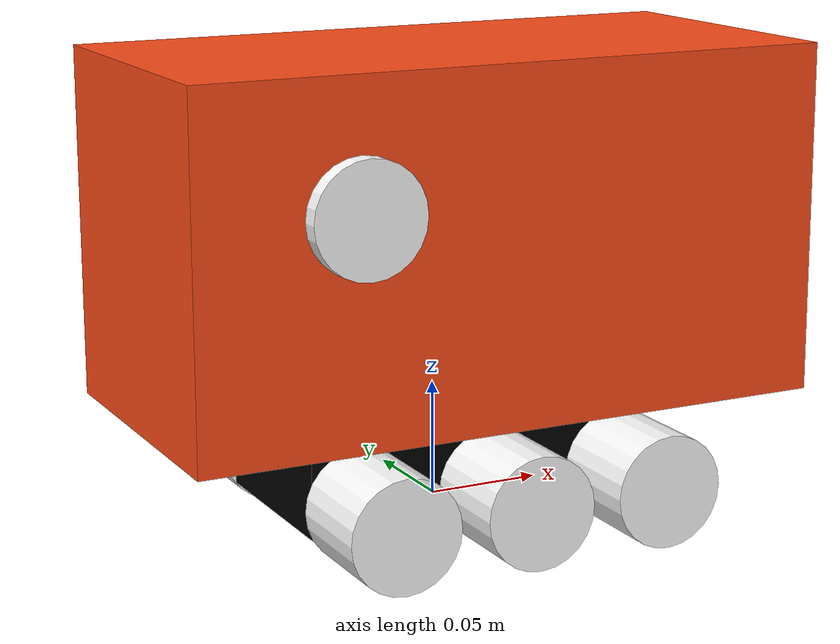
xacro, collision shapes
<?xml version="1.0"?>
<robot xmlns:xacro="http://www.ros.org/wiki/xacro" name="robot">

    <xacro:include filename="inertial_macros.xacro"/>

    <material name="white">
        <color rgba="1 1 1 1" />
    </material>

    <material name="orange">
        <color rgba="1 0.3 0.1 1" />
    </material>

    <material name="black">
        <color rgba="0 0 0 1" />
    </material>

    <material name="red">
        <color rgba="1 0 0 1" />
    </material>

    <!-- BASE LINK -->

    <link name="base_link">

    </link>

    <!-- CHASSIS LINK -->

    <joint name="chassis_joint" type="fixed">
        <parent link="base_link" />
        <child link="chassis" />
        <origin xyz="0 0 0" />
    </joint>

    <link name="chassis">
        <visual>
            <origin xyz="0 0 0" />
            <geometry>
                <mesh filename="file://$(find kapibara)/meshes/Bottom.stl" scale="0.001 0.001 0.001" />
            </geometry>
            <material name="black" />
        </visual>
        <collision>
            <origin xyz="0 0 0.02" />
            <geometry>
                <box size="0.150 0.083 0.033" />
            </geometry>
        </collision>
        <xacro:inertial_box mass="0.65" x="0.15" y="0.083" z="0.033" >
            <origin xyz="0 0 0.02" rpy="0 0 0" />
        </xacro:inertial_box>
    </link>

    <gazebo reference="chassis">
        <material>Gazebo/Black</material>
    </gazebo>

    <!-- Base -->

    <joint name="base_joint" type="fixed">
        <parent link="chassis" />
        <child link="base" />
        <origin xyz="0.027 0 0.05" />
    </joint>

    <link name="base">
        <visual>
            <origin xyz="0 0 0.05" />
            <geometry>
                <mesh filename="file://$(find kapibara)/meshes/Top.stl" scale="0.001 0.001 0.001" />
            </geometry>
            <material name="orange" />
        </visual>
        <collision>
            <origin xyz="-0.02 0 0.07" />
            <geometry>
                <box size="0.279 0.134 0.15" />
            </geometry>
        </collision>
        <xacro:inertial_box mass="1.15" x="0.279" y="0.134" z="0.15" >
            <origin xyz="-0.02 0 0.07" rpy="0 0 0" />
        </xacro:inertial_box>
    </link>

    <gazebo reference="base">
        <material>Gazebo/Orange</material>
    </gazebo>

    <!-- LEFT WHEEL LINK -->

    <joint name="wheel_left1_joint" type="continuous">
        <parent link="chassis" />
        <child link="left_wheel1" />
        <axis xyz="0 0 1"/>
        <origin rpy="${-pi/2} 0 0" xyz="0.065 0.066 0.0165"/>
    </joint>

    <link name="left_wheel1">
        <visual>
            <origin xyz="0 0 0" />
            <geometry>
                <cylinder radius="0.024" length="0.044" />
            </geometry>
            <material name="white" />
        </visual>
        <collision>
            <origin xyz="0 0 0" />
            <geometry>
                <cylinder radius="0.024" length="0.044" />
            </geometry>
        </collision>
        <xacro:inertial_cylinder mass="0.1" radius="0.024" length="0.044">
            <origin xyz="0 0 0" rpy="0 0 1" />
        </xacro:inertial_cylinder>
    </link>

    <joint name="wheel_left2_joint" type="continuous">
        <parent link="chassis" />
        <child link="left_wheel2" />
        <axis xyz="0 0 1"/>
        <origin rpy="${-pi/2} 0 0" xyz="0.005 0.066 0.0165"/>
    </joint>

    <link name="left_wheel2">
        <visual>
            <origin xyz="0 0 0" />
            <geometry>
                <cylinder radius="0.024" length="0.044" />
            </geometry>
            <material name="white" />
        </visual>
        <collision>
            <origin xyz="0 0 0" />
            <geometry>
                <cylinder radius="0.024" length="0.044" />
            </geometry>
        </collision>
        <xacro:inertial_cylinder mass="0.1" radius="0.024" length="0.044">
            <origin xyz="0 0 0" rpy="0 0 1" />
        </xacro:inertial_cylinder>
    </link>

    <joint name="wheel_left3_joint" type="continuous">
        <parent link="chassis" />
        <child link="left_wheel3" />
        <axis xyz="0 0 1"/>
        <origin rpy="${-pi/2} 0 0" xyz="-0.055 0.066 0.0165"/>
    </joint>

    <link name="left_wheel3">
        <visual>
            <origin xyz="0 0 0" />
            <geometry>
                <cylinder radius="0.024" length="0.044" />
            </geometry>
            <material name="white" />
        </visual>
        <collision>
            <origin xyz="0 0 0" />
            <geometry>
                <cylinder radius="0.024" length="0.044" />
            </geometry>
        </collision>
        <xacro:inertial_cylinder mass="0.1" radius="0.024" length="0.044">
            <origin xyz="0 0 0" rpy="0 0 1" />
        </xacro:inertial_cylinder>
    </link>

    <!-- RIGHT WHEEL LINK -->

    <joint name="wheel_right1_joint" type="continuous">
        <parent link="chassis" />
        <child link="right_wheel1" />
        <axis xyz="0 0 1"/>
        <origin rpy="${-pi/2} 0 0" xyz="0.065 -0.066 0.0165"/>
    </joint>

    <link name="right_wheel1">
        <visual>
            <origin xyz="0 0 0" />
            <geometry>
                <cylinder radius="0.024" length="0.044" />
            </geometry>
            <material name="white" />
        </visual>
        <collision>
            <origin xyz="0 0 0" />
            <geometry>
                <cylinder radius="0.024" length="0.044" />
            </geometry>
        </collision>
        <xacro:inertial_cylinder mass="0.1" radius="0.024" length="0.044">
            <origin xyz="0 0 0" rpy="0 0 1" />
        </xacro:inertial_cylinder>
    </link>

    <joint name="wheel_right2_joint" type="continuous">
        <parent link="chassis" />
        <child link="right_wheel2" />
        <axis xyz="0 0 1"/>
        <origin rpy="${-pi/2} 0 0" xyz="0.005 -0.066 0.0165"/>
    </joint>

    <link name="right_wheel2">
        <visual>
            <origin xyz="0 0 0" />
            <geometry>
                <cylinder radius="0.024" length="0.044" />
            </geometry>
            <material name="white" />
        </visual>
        <collision>
            <origin xyz="0 0 0" />
            <geometry>
                <cylinder radius="0.024" length="0.044" />
            </geometry>
        </collision>
        <xacro:inertial_cylinder mass="0.1" radius="0.024" length="0.044">
            <origin xyz="0 0 0" rpy="0 0 1" />
        </xacro:inertial_cylinder>
    </link>

    <joint name="wheel_right3_joint" type="continuous">
        <parent link="chassis" />
        <child link="right_wheel3" />
        <axis xyz="0 0 1"/>
        <origin rpy="${-pi/2} 0 0" xyz="-0.055 -0.066 0.0165"/>
    </joint>

    <link name="right_wheel3">
        <visual>
            <origin xyz="0 0 0" />
            <geometry>
                <cylinder radius="0.024" length="0.044" />
            </geometry>
            <material name="white" />
        </visual>
        <collision>
            <origin xyz="0 0 0" />
            <geometry>
                <cylinder radius="0.024" length="0.044" />
            </geometry>
        </collision>
        <xacro:inertial_cylinder mass="0.1" radius="0.024" length="0.044">
            <origin xyz="0 0 0" rpy="0 0 1" />
        </xacro:inertial_cylinder>
    </link>

    <!-- EARS -->

    <joint name="left_ear_joint" type="revolute">
        <parent link="base" />
        <child link="left_ear" />
        <axis xyz="0 1 0"/>
        <origin rpy="0 ${-pi/2} 0" xyz="-0.09 0.075 0.09" />
        <limit effort="1" velocity="1" upper="${pi}" lower="0" />
    </joint>

    <link name="left_ear">
        <visual>
            <origin xyz="0 0 0" />
            <geometry>
                <mesh filename="package://kapibara/meshes/Wing1.stl" scale="0.001 0.001 0.001" />
            </geometry>
            <material name="white" />
        </visual>
        <collision>
            <origin xyz="0 0 0" rpy="${pi/2} 0 0"/>
            <geometry>
                <cylinder radius="0.024" length="0.01" />
            </geometry>
        </collision>
        <xacro:inertial_cylinder mass="0.1" radius="0.024" length="0.01">
            <origin xyz="0 0 0" rpy="${pi/2} 0 0" />
        </xacro:inertial_cylinder>
    </link>

     <joint name="right_ear_joint" type="revolute">
        <parent link="base" />
        <child link="righ_ear" />
        <axis xyz="0 1 0"/>
        <origin rpy="0 ${-pi/2} 0" xyz="-0.09 -0.070 0.09" />
        <limit effort="1" velocity="1" upper="${pi}" lower="0" />
    </joint>

    <link name="righ_ear">
        <visual>
            <origin xyz="0 0 0" />
            <geometry>
                <mesh filename="package://kapibara/meshes/Wing2.stl" scale="0.001 0.001 0.001" />
            </geometry>
            <material name="white" />
        </visual>
        <collision>
            <origin xyz="0 0 0" rpy="${pi/2} 0 0" />
            <geometry>
                <cylinder radius="0.024" length="0.01" />
            </geometry>
        </collision>
        <xacro:inertial_cylinder mass="0.1" radius="0.024" length="0.01">
            <origin xyz="0 0 0" rpy="${pi/2} 0 0" />
        </xacro:inertial_cylinder>
    </link>

</robot>
